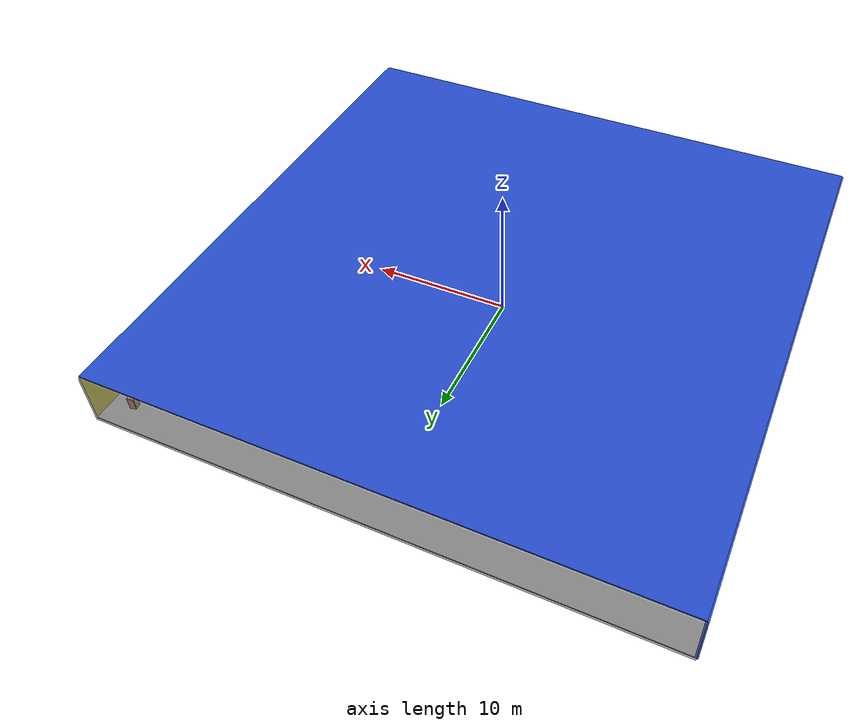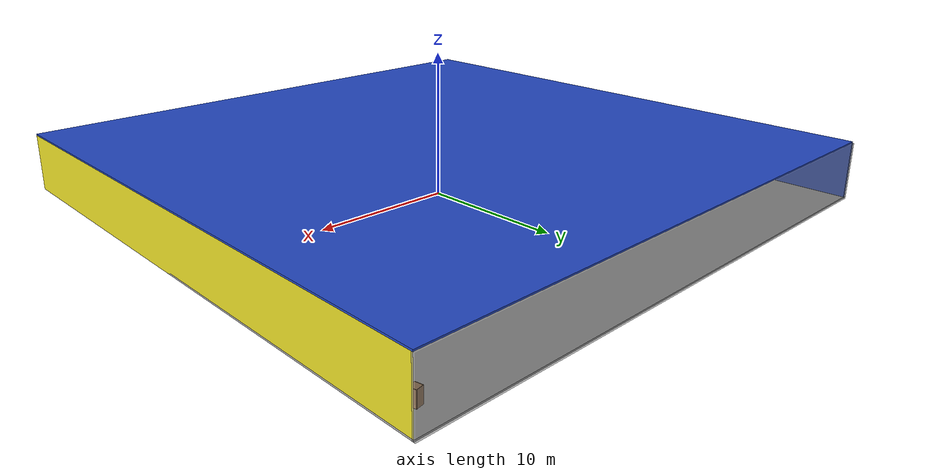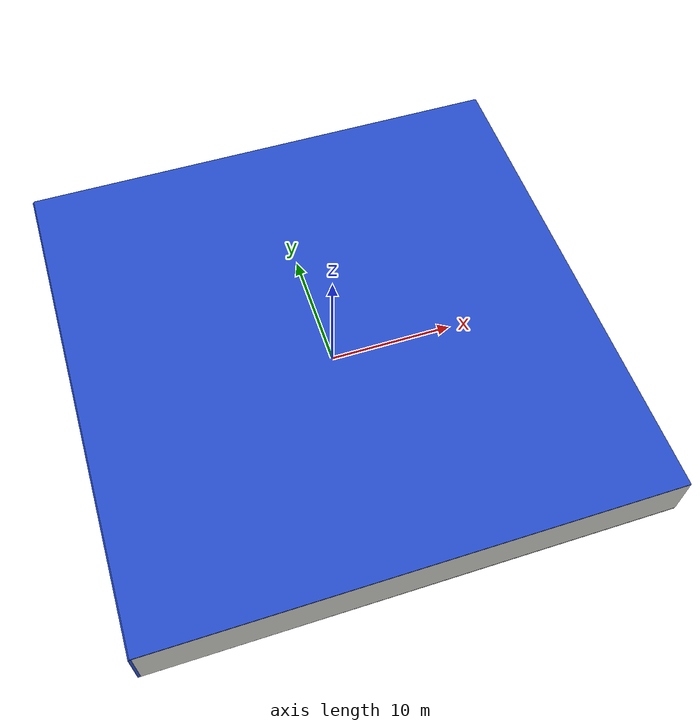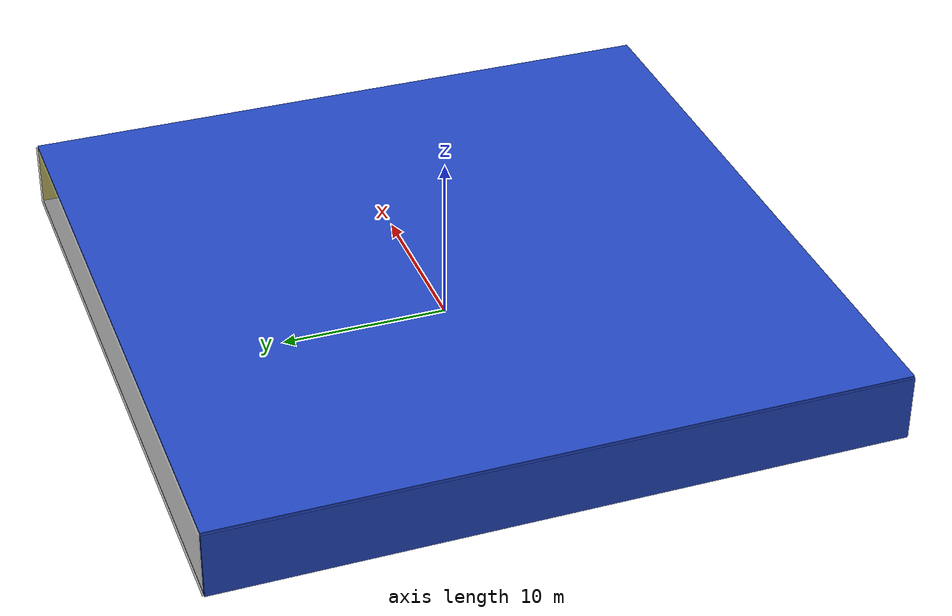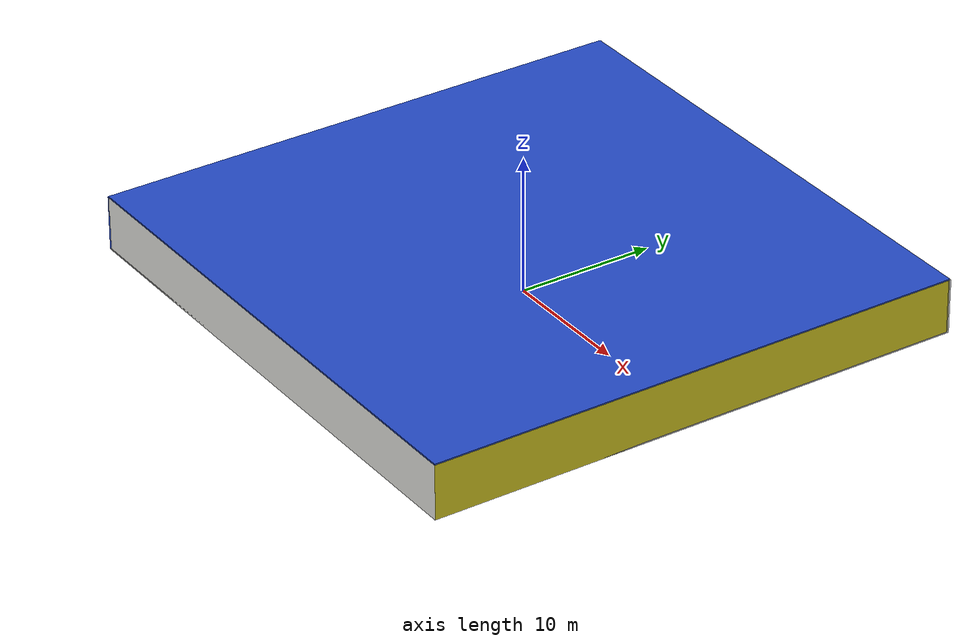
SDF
<sdf version="1.4">
 <world name="default">
  <physics type="ode">
   <max_step_size>0.001</max_step_size>
   <real_time_factor>1</real_time_factor>
   <real_time_update_rate>1000</real_time_update_rate>
   <gravity>0 0 -9.8</gravity>
  </physics>
  <scene><ambient>0.4 0.4 0.4 1</ambient><background>0.7 0.7 0.7 1</background><shadows>1</shadows></scene>
  <model name="Surrounding">
   <static>1</static>
   <link name="Ceiling">
    <collision name="Ceiling_Collision"><geometry><box><size>40 40 0.1</size></box></geometry></collision>
    <visual name="Ceiling_Visual">
     <geometry><box><size>40 40 0.1</size></box></geometry>
     <material>
      <script><uri>file://media/materials/scripts/gazebo.material</uri><name>Gazebo/BlueLaser</name></script>
     </material>
    </visual>
    <pose>0 0 4.05 0 0 0</pose>
   </link>
   <link name="Wall_South">
    <collision name="Wall_South_Collision">
     <geometry><box><size>40 0 4</size></box></geometry>
     <pose>0 0 2 0 -0 0</pose>
    </collision>
    <visual name="Wall_South_Visual">
     <pose>0 0 2 0 -0 0</pose>
     <geometry><box><size>40 0 4</size></box></geometry>
     <material>
      <script><uri>file://media/materials/scripts/gazebo.material</uri><name>Gazebo/CeilingTiled</name></script>
     </material>
    </visual>
    <velocity_decay><linear>0</linear><angular>0</angular></velocity_decay>
    <pose>0 -20 0 0 -0 0</pose>
   </link>
   <link name="Wall_East">
    <collision name="Wall_21_Collision">
     <geometry><box><size>40 0 4</size></box></geometry>
     <pose>0 0 2 0 -0 0</pose>
    </collision>
    <visual name="Wall_21_Visual">
     <pose>0 0 2 0 -0 0</pose>
     <geometry><box><size>40 0 4</size></box></geometry>
     <material>
      <script><uri>file://media/materials/scripts/gazebo.material</uri><name>Gazebo/YellowGlow</name></script>
     </material>
    </visual>
    <velocity_decay><linear>0</linear><angular>0</angular></velocity_decay>
    <pose>20 0 0 0 -0 1.5708</pose>
   </link>
   <link name="Wall_North">
    <collision name="Wall_22_Collision">
     <geometry><box><size>40 0.2 4</size></box></geometry>
     <pose>0 0 2 0 -0 0</pose>
    </collision>
    <visual name="Wall_22_Visual">
     <pose>0 0 2 0 -0 0</pose>
     <geometry><box><size>40 0.2 4</size></box></geometry>
     <material>
      <script><uri>file://media/materials/scripts/gazebo.material</uri><name>Gazebo/GreyTransparent</name></script>
     </material>
    </visual>
    <velocity_decay><linear>0</linear><angular>0</angular></velocity_decay>
    <pose>0 20 0 0 -0 0</pose>
   </link>
   <link name="Wall_West">
    <collision name="Wall_23_Collision">
     <geometry><box><size>40 0.2 4</size></box></geometry>
     <pose>0 0 2 0 -0 0</pose>
    </collision>
    <visual name="Wall_23_Visual">
     <pose>0 0 2 0 -0 0</pose>
     <geometry><box><size>40 0.2 4</size></box></geometry>
     <material>
      <script><uri>file://media/materials/scripts/gazebo.material</uri><name>Gazebo/BlueGlow</name></script>
     </material>
    </visual>
    <velocity_decay><linear>0</linear><angular>0</angular></velocity_decay>
    <pose>-20 0 0 0 0 -1.5708</pose>
   </link>
   <link name="Ground_link">
    <collision name="collision">
     <pose>0 0 .05 0 -0 0</pose>
     <geometry><box><size>40 40 0.1</size></box></geometry>
    </collision>
    <visual name="visual">
     <pose>0 0 .05 0 -0 0</pose>
     <geometry><box><size>40 40 0.1</size></box></geometry>
     <material>
      <script><uri>file://media/materials/scripts/gazebo.material</uri><name>Gazebo/PioneerBody</name></script>
     </material>
    </visual>
   </link>
   <static>1</static>
  </model>
  <spherical_coordinates>
   <surface_model>EARTH_WGS84</surface_model>
   <latitude_deg>0</latitude_deg>
   <longitude_deg>0</longitude_deg>
   <elevation>0</elevation>
   <heading_deg>0</heading_deg>
  </spherical_coordinates>
  <light name="lightball_0" type="diffuse">
   <diffuse>0.8 0.8 0.8 1</diffuse>
   <specular>0.2 0.2 0.2 1</specular>
   <attenuation>
    <range>100</range>
    <constant>0.7</constant>
    <linear>0.01</linear>
    <quadratic>0.001</quadratic>
   </attenuation>
   <direction>-0.5 0.1 -0.9</direction>
   <pose>-9.37688553205 12.0081339959 1.9936121795 0 0 0</pose>
  </light>
  <light name="lightball_1" type="diffuse">
   <diffuse>0.8 0.8 0.8 1</diffuse>
   <specular>0.2 0.2 0.2 1</specular>
   <attenuation>
    <range>100</range>
    <constant>0.7</constant>
    <linear>0.01</linear>
    <quadratic>0.001</quadratic>
   </attenuation>
   <direction>-0.5 0.1 -0.9</direction>
   <pose>-14.3590707012 13.5926292541 2.53919292808 0 0 0</pose>
  </light>
  <light name="lightball_2" type="diffuse">
   <diffuse>0.8 0.8 0.8 1</diffuse>
   <specular>0.2 0.2 0.2 1</specular>
   <attenuation>
    <range>100</range>
    <constant>0.7</constant>
    <linear>0.01</linear>
    <quadratic>0.001</quadratic>
   </attenuation>
   <direction>-0.5 0.1 -0.9</direction>
   <pose>6.66317146613 17.650372588 0.644298974089 0 0 0</pose>
  </light>
  <light name="lightball_3" type="diffuse">
   <diffuse>0.8 0.8 0.8 1</diffuse>
   <specular>0.2 0.2 0.2 1</specular>
   <attenuation>
    <range>100</range>
    <constant>0.7</constant>
    <linear>0.01</linear>
    <quadratic>0.001</quadratic>
   </attenuation>
   <direction>-0.5 0.1 -0.9</direction>
   <pose>7.26699767194 -9.04353485049 3.27082458955 0 0 0</pose>
  </light>
  <include><uri>model://cabinet</uri><pose>-18.5295785547 8.66751520397 0 0 0 0.583267035895</pose></include>
  <include><uri>model://table</uri><pose>-15.1316814028 -16.8330699612 0 0 0 1.7512932182</pose></include>
  <include>
   <uri>model://construction_cone</uri>
   <pose>-14.1148361634 -3.69657305198 0 0 0 3.12303066902</pose>
  </include>
  <include><uri>model://cabinet</uri><pose>-15.3569661494 3.80308091966 0 0 0 2.31818860598</pose></include>
  <include>
   <uri>model://construction_cone</uri>
   <pose>-11.0064318929 -11.3404017723 0 0 0 1.13194360689</pose>
  </include>
  <include>
   <uri>model://textured_shapes</uri>
   <pose>-8.70758223364 -1.38307487303 0 0 0 0.000687028639702</pose>
  </include>
  <include>
   <uri>model://robocup_3Dsim_goal</uri>
   <pose>-8.19748303175 6.35926278634 0 0 0 0.411003763128</pose>
  </include>
  <include><uri>model://cabinet</uri><pose>-5.45898741091 -9.41021779487 0 0 0 2.14649572627</pose></include>
  <include><uri>model://cabinet</uri><pose>-4.77085589545 12.1504247891 0 0 0 0.706161543954</pose></include>
  <include>
   <uri>model://robocup_3Dsim_goal</uri>
   <pose>-2.41508005036 -3.43948948577 0 0 0 1.71340215104</pose>
  </include>
  <include>
   <uri>model://construction_cone</uri>
   <pose>-1.32769052584 6.13723988327 0 0 0 2.91345655116</pose>
  </include>
  <include>
   <uri>model://robocup_3Dsim_goal</uri>
   <pose>-0.135287524911 -16.4672655172 0 0 0 0.498360792922</pose>
  </include>
  <include><uri>model://cabinet</uri><pose>-0.0425994624757 3.48174151949 0 0 0 1.84537826384</pose></include>
  <include>
   <uri>model://construction_cone</uri>
   <pose>2.54069986731 -17.9984390699 0 0 0 0.756075778025</pose>
  </include>
  <include><uri>model://table</uri><pose>6.03158060652 -15.4233157765 0 0 0 0.567386705014</pose></include>
  <include><uri>model://table</uri><pose>12.0328865989 -16.4801183572 0 0 0 0.942296200087</pose></include>
  <include><uri>model://table</uri><pose>12.1158795739 -12.3546410587 0 0 0 0.258811581729</pose></include>
  <include>
   <uri>model://construction_cone</uri>
   <pose>12.1546826757 1.27088022448 0 0 0 1.46064835953</pose>
  </include>
  <include><uri>model://cabinet</uri><pose>16.6268402415 -1.89011394297 0 0 0 1.88552857363</pose></include>
  <include>
   <uri>model://robocup_3Dsim_goal</uri>
   <pose>15.3731097138 14.404440078 0 0 0 1.80309584308</pose>
  </include>
  <include>
   <uri>model://textured_shapes</uri>
   <pose>17.6349253672 -12.6363814022 0 0 0 0.410454259197</pose>
  </include>
  <include><uri>model://table</uri><pose>17.700067648 -1.44841763383 0 0 0 0.827014232665</pose></include>
  <include><uri>model://cabinet</uri><pose>17.4859801255 5.40255034046 0 0 0 1.88080852056</pose></include>
  <include><uri>model://cabinet</uri><pose>18.9981540335 10.4043879956 0 0 0 0.144943740544</pose></include>
  <include><uri>model://cabinet</uri><pose>18.3620518091 18.26866604 0 0 0 1.76837127409</pose></include>
 </world>
</sdf>

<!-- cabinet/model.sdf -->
<sdf version="1.5">
  <model name="cabinet">
    <static>true</static>
    <link name="cabinet_bottom_plate">
      <inertial>
        <pose>0 0 -1 0 0 0</pose>
        <inertia>
          <ixx>2.050000</ixx>
          <ixy>0</ixy>
          <ixz>0</ixz>
          <iyy>2.050000</iyy>
          <iyz>0</iyz>
          <izz>2.050000</izz>
        </inertia>
        <mass>25.000000</mass>
      </inertial>
      <collision name="cabinet_bottom_plate_geom">
        <pose>0 0 0.010000 0 0 0</pose>
        <geometry>
          <box>
            <size>0.450000 0.450000 0.020000</size>
          </box>
        </geometry>
      </collision>
      <visual name="cabinet_bottom_plate_geom_visual">
        <pose>0 0 0.010000 0 0 0</pose>
        <geometry>
          <box>
            <size>0.450000 0.450000 0.020000</size>
          </box>
        </geometry>
        <material>
          <script>
            <uri>model://media/materials/scripts/gazebo.material</uri>
            <name>Gazebo/Wood</name>
          </script>
        </material>
      </visual>
      <collision name="cabinet_bottom_plate_geom_cabinet_back_plate">
        <pose>0.235000 0 0.510000 0 0 0</pose>
        <geometry>
          <box>
            <size>0.020000 0.450000 1.020000</size>
          </box>
        </geometry>
      </collision>
      <visual name="cabinet_bottom_plate_geom_cabinet_back_plate_visual">
        <pose>0.235000 0 0.510000 0 0 0</pose>
        <geometry>
          <box>
            <size>0.020000 0.450000 1.020000</size>
          </box>
        </geometry>
        <material>
          <script>
            <uri>model://media/materials/scripts/gazebo.material</uri>
            <name>Gazebo/Wood</name>
          </script>
        </material>
      </visual>
      <collision name="cabinet_bottom_plate_geom_cabinet_left_plate">
        <pose>0 0.235000 0.510000 0 0 0</pose>
        <geometry>
          <box>
            <size>0.450000 0.020000 1.020000</size>
          </box>
        </geometry>
      </collision>
      <visual name="cabinet_bottom_plate_geom_cabinet_left_plate_visual">
        <pose>0 0.235000 0.510000 0 0 0</pose>
        <geometry>
          <box>
            <size>0.450000 0.020000 1.020000</size>
          </box>
        </geometry>
        <material>
          <script>
            <uri>model://media/materials/scripts/gazebo.material</uri>
            <name>Gazebo/Wood</name>
          </script>
        </material>
      </visual>
      <collision name="cabinet_bottom_plate_geom_cabinet_middle_plate">
        <pose>0 0 0.510000 0 0 0</pose>
        <geometry>
          <box>
            <size>0.450000 0.450000 0.020000</size>
          </box>
        </geometry>
      </collision>
      <visual name="cabinet_bottom_plate_geom_cabinet_middle_plate_visual">
        <pose>0 0 0.510000 0 0 0</pose>
        <geometry>
          <box>
            <size>0.450000 0.450000 0.020000</size>
          </box>
        </geometry>
        <material>
          <script>
            <uri>model://media/materials/scripts/gazebo.material</uri>
            <name>Gazebo/Wood</name>
          </script>
        </material>
      </visual>
      <collision name="cabinet_bottom_plate_geom_cabinet_right_plate">
        <pose>0 -0.235000 0.510000 0 0 0</pose>
        <geometry>
          <box>
            <size>0.450000 0.020000 1.020000</size>
          </box>
        </geometry>
      </collision>
      <visual name="cabinet_bottom_plate_geom_cabinet_right_plate_visual">
        <pose>0 -0.235000 0.510000 0 0 0</pose>
        <geometry>
          <box>
            <size>0.450000 0.020000 1.020000</size>
          </box>
        </geometry>
        <material>
          <script>
            <uri>model://media/materials/scripts/gazebo.material</uri>
            <name>Gazebo/Wood</name>
          </script>
        </material>
      </visual>
      <collision name="cabinet_bottom_plate_geom_cabinet_top_plate">
        <pose>0 0 1.010000 0 0 0</pose>
        <geometry>
          <box>
            <size>0.450000 0.450000 0.020000</size>
          </box>
        </geometry>
      </collision>
      <visual name="cabinet_bottom_plate_geom_cabinet_top_plate_visual">
        <pose>0 0 1.010000 0 0 0</pose>
        <geometry>
          <box>
            <size>0.450000 0.450000 0.020000</size>
          </box>
        </geometry>
        <material>
          <script>
            <uri>model://media/materials/scripts/gazebo.material</uri>
            <name>Gazebo/Wood</name>
          </script>
        </material>
      </visual>
    </link>
  </model>
</sdf>

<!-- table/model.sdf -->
<sdf version="1.5">
  <model name="table">
    <static>true</static>
    <link name="link">
      <collision name="surface">
        <pose>0 0 1.0 0 0 0</pose>
        <geometry>
          <box>
            <size>1.5 0.8 0.03</size>
          </box>
        </geometry>
        <surface>
          <friction>
            <ode>
              <mu>0.6</mu>
              <mu2>0.6</mu2>
            </ode>
          </friction>
        </surface>
      </collision>
      <visual name="visual1">
        <pose>0 0 1.0 0 0 0</pose>
        <geometry>
          <box>
            <size>1.5 0.8 0.03</size>
          </box>
        </geometry>
        <material>
          <script>
            <uri>model://media/materials/scripts/gazebo.material</uri>
            <name>Gazebo/Wood</name>
          </script>
        </material>
      </visual>
      <collision name="front_left_leg">
        <pose>0.68 0.38 0.5 0 0 0</pose>
        <geometry>
          <cylinder>
            <radius>0.02</radius>
            <length>1.0</length>
          </cylinder>
        </geometry>
      </collision>
      <visual name="front_left_leg">
        <pose>0.68 0.38 0.5 0 0 0</pose>
        <geometry>
          <cylinder>
            <radius>0.02</radius>
            <length>1.0</length>
          </cylinder>
        </geometry>
        <material>
          <script>
            <uri>model://media/materials/scripts/gazebo.material</uri>
            <name>Gazebo/Grey</name>
          </script>
        </material>
      </visual>
      <collision name="front_right_leg">
        <pose>0.68 -0.38 0.5 0 0 0</pose>
        <geometry>
          <cylinder>
            <radius>0.02</radius>
            <length>1.0</length>
          </cylinder>
        </geometry>
      </collision>
      <visual name="front_right_leg">
        <pose>0.68 -0.38 0.5 0 0 0</pose>
        <geometry>
          <cylinder>
            <radius>0.02</radius>
            <length>1.0</length>
          </cylinder>
        </geometry>
        <material>
          <script>
            <uri>model://media/materials/scripts/gazebo.material</uri>
            <name>Gazebo/Grey</name>
          </script>
        </material>
      </visual>
      <collision name="back_right_leg">
        <pose>-0.68 -0.38 0.5 0 0 0</pose>
        <geometry>
          <cylinder>
            <radius>0.02</radius>
            <length>1.0</length>
          </cylinder>
        </geometry>
      </collision>
      <visual name="back_right_leg">
        <pose>-0.68 -0.38 0.5 0 0 0</pose>
        <geometry>
          <cylinder>
            <radius>0.02</radius>
            <length>1.0</length>
          </cylinder>
        </geometry>
        <material>
          <script>
            <uri>model://media/materials/scripts/gazebo.material</uri>
            <name>Gazebo/Grey</name>
          </script>
        </material>
      </visual>
      <collision name="back_left_leg">
        <pose>-0.68 0.38 0.5 0 0 0</pose>
        <geometry>
          <cylinder>
            <radius>0.02</radius>
            <length>1.0</length>
          </cylinder>
        </geometry>
      </collision>
      <visual name="back_left_leg">
        <pose>-0.68 0.38 0.5 0 0 0</pose>
        <geometry>
          <cylinder>
            <radius>0.02</radius>
            <length>1.0</length>
          </cylinder>
        </geometry>
        <material>
          <script>
            <uri>model://media/materials/scripts/gazebo.material</uri>
            <name>Gazebo/Grey</name>
          </script>
        </material>
      </visual>
    </link>
  </model>
</sdf>

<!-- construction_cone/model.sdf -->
<sdf version="1.5">
  <model name="Construction Cone">
    <link name="link">
      <collision name="collision">
        <geometry>
          <mesh>
            <scale>10 10 10</scale>
            <uri>file://isr-testbed/construction_cone/meshes/construction_cone.dae</uri>
          </mesh>
        </geometry>
      </collision>
      <visual name="visual">
        <geometry>
          <mesh>
            <scale>10 10 10</scale>
            <uri>file://isr-testbed/construction_cone/meshes/construction_cone.dae</uri>
          </mesh>
        </geometry>
      </visual>
    </link>
  </model>
</sdf>

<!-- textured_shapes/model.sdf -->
<sdf version="1.6">
  <model name="textured_shapes">
    <pose>0 0 0.5 0 0 0</pose>
    <link name="box">
      <pose>0 -1.5 0 0 0 0</pose>
      <collision name="collision">
        <geometry>
          <box>
            <size>1 1 1</size>
          </box>
        </geometry>
      </collision>
      <visual name="visual">
        <geometry>
          <box>
            <size>1 1 1</size>
          </box>
        </geometry>
        <material>
          <script>
            <uri>model://../model_source/models/textured_shapes/materials/scripts</uri>
            <uri>model://../model_source/models/textured_shapes/materials/textures</uri>
            <name>TexturedShape/Squares</name>
          </script>
        </material>
      </visual>
    </link>
    <link name="sphere">
      <collision name="collision">
        <geometry>
          <sphere>
            <radius>0.5</radius>
          </sphere>
        </geometry>
      </collision>
      <visual name="visual">
        <geometry>
          <sphere>
            <radius>0.5</radius>
          </sphere>
        </geometry>
        <material>
          <script>
            <uri>model://../model_source/models/textured_shapes/materials/scripts</uri>
            <uri>model://../model_source/models/textured_shapes/materials/textures</uri>
            <name>TexturedShape/Squares</name>
          </script>
        </material>
      </visual>
    </link>
    <link name="cylinder">
      <pose>0 1.5 0 0 0 0</pose>
      <collision name="collision">
        <geometry>
          <cylinder>
            <radius>0.5</radius>
            <length>1</length>
          </cylinder>
        </geometry>
      </collision>
      <visual name="visual">
        <geometry>
          <cylinder>
            <radius>0.5</radius>
            <length>1</length>
          </cylinder>
        </geometry>
        <material>
          <script>
            <uri>model://../model_source/models/textured_shapes/materials/scripts</uri>
            <uri>model://../model_source/models/textured_shapes/materials/textures</uri>
            <name>TexturedShape/Squares</name>
          </script>
        </material>
      </visual>
    </link>
  </model>
</sdf>

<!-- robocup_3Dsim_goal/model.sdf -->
<sdf version="1.5">
  <model name="robocup_3d_goal">
    <static>true</static>
    <link name="left_post">
      <pose>0 1.05 0.45 0 0 0</pose>
      <collision name="collision">
        <geometry>
          <cylinder>
            <radius>0.05</radius>
            <length>0.9</length>
          </cylinder>
        </geometry>
      </collision>
      <visual name="visual">
        <geometry>
          <cylinder>
            <radius>0.05</radius>
            <length>0.9</length>
          </cylinder>
        </geometry>
        <material>
          <script>
            <uri>file://media/materials/scripts/gazebo.material</uri>
            <name>Gazebo/ZincYellow</name>
          </script>
        </material>
      </visual>
    </link>
    <link name="left_support_horiz_lower">
      <pose>0.30 1.05 0.01 0 0 0</pose>
      <collision name="collision">
        <geometry>
          <box>
            <size>0.50 0.02 0.02</size>
          </box>
        </geometry>
      </collision>
      <visual name="visual">
        <geometry>
          <box>
            <size>0.50 0.02 0.02</size>
          </box>
        </geometry>
        <material>
          <script>
            <uri>file://media/materials/scripts/gazebo.material</uri>
            <name>Gazebo/White</name>
          </script>
        </material>
      </visual>
    </link>
    <link name="left_support_horiz_upper">
      <pose>0.30 1.05 0.79 0 0 0</pose>
      <collision name="collision">
        <geometry>
          <box>
            <size>0.50 0.02 0.02</size>
          </box>
        </geometry>
      </collision>
      <visual name="visual">
        <geometry>
          <box>
            <size>0.50 0.02 0.02</size>
          </box>
        </geometry>
        <material>
          <script>
            <uri>file://media/materials/scripts/gazebo.material</uri>
            <name>Gazebo/White</name>
          </script>
        </material>
      </visual>
    </link>
    <link name="left_support_vertical">
      <pose>0.56 1.05 0.4 0 1.5708 0</pose>
      <collision name="collision">
        <geometry>
          <box>
            <size>0.80 0.02 0.02</size>
          </box>
        </geometry>
      </collision>
      <visual name="visual">
        <geometry>
          <box>
            <size>0.80 0.02 0.02</size>
          </box>
        </geometry>
        <material>
          <script>
            <uri>file://media/materials/scripts/gazebo.material</uri>
            <name>Gazebo/White</name>
          </script>
        </material>
      </visual>
    </link>
    <link name="right_support_horiz_lower">
      <pose>0.30 -1.05 0.01 0 0 0</pose>
      <collision name="collision">
        <geometry>
          <box>
            <size>0.50 0.02 0.02</size>
          </box>
        </geometry>
      </collision>
      <visual name="visual">
        <geometry>
          <box>
            <size>0.50 0.02 0.02</size>
          </box>
        </geometry>
        <material>
          <script>
            <uri>file://media/materials/scripts/gazebo.material</uri>
            <name>Gazebo/White</name>
          </script>
        </material>
      </visual>
    </link>
    <link name="right_support_horiz_upper">
      <pose>0.30 -1.05 0.79 0 0 0</pose>
      <collision name="collision">
        <geometry>
          <box>
            <size>0.50 0.02 0.02</size>
          </box>
        </geometry>
      </collision>
      <visual name="visual">
        <geometry>
          <box>
            <size>0.50 0.02 0.02</size>
          </box>
        </geometry>
        <material>
          <script>
            <uri>file://media/materials/scripts/gazebo.material</uri>
            <name>Gazebo/White</name>
          </script>
        </material>
      </visual>
    </link>
    <link name="right_support_vertical">
      <pose>0.56 -1.05 0.4 0 1.5708 0</pose>
      <collision name="collision">
        <geometry>
          <box>
            <size>0.80 0.02 0.02</size>
          </box>
        </geometry>
      </collision>
      <visual name="visual">
        <geometry>
          <box>
            <size>0.80 0.02 0.02</size>
          </box>
        </geometry>
        <material>
          <script>
            <uri>file://media/materials/scripts/gazebo.material</uri>
            <name>Gazebo/White</name>
          </script>
        </material>
      </visual>
    </link>
    <link name="center_support_horiz_lower">
      <pose>0.56 0 0.01 0 1.5708 0</pose>
      <collision name="collision">
        <geometry>
          <box>
            <size>0.02 2.08 0.02</size>
          </box>
        </geometry>
      </collision>
      <visual name="visual">
        <geometry>
          <box>
            <size>0.02 2.08 0.02</size>
          </box>
        </geometry>
        <material>
          <script>
            <uri>file://media/materials/scripts/gazebo.material</uri>
            <name>Gazebo/White</name>
          </script>
        </material>
      </visual>
    </link>
    <link name="center_support_horiz_upper">
      <pose>0.56 0 0.79 0 1.5708 0</pose>
      <collision name="collision">
        <geometry>
          <box>
            <size>0.02 2.08 0.02</size>
          </box>
        </geometry>
      </collision>
      <visual name="visual">
        <geometry>
          <box>
            <size>0.02 2.08 0.02</size>
          </box>
        </geometry>
        <material>
          <script>
            <uri>file://media/materials/scripts/gazebo.material</uri>
            <name>Gazebo/White</name>
          </script>
        </material>
      </visual>
    </link>
    <link name="right_post">
      <pose>0 -1.05 0.45 0 0 0</pose>
      <collision name="collision">
        <geometry>
          <cylinder>
            <radius>0.05</radius>
            <length>0.9</length>
          </cylinder>
        </geometry>
      </collision>
      <visual name="visual">
        <geometry>
          <cylinder>
            <radius>0.05</radius>
            <length>0.9</length>
          </cylinder>
        </geometry>
        <material>
          <script>
            <uri>file://media/materials/scripts/gazebo.material</uri>
            <name>Gazebo/ZincYellow</name>
          </script>
        </material>
      </visual>
    </link>
    <link name="crossbar">
      <pose>0 0 0.85 1.57 1.57 0</pose>
      <collision name="collision">
        <geometry>
          <cylinder>
            <radius>0.05</radius>
            <length>2.0</length>
          </cylinder>
        </geometry>
      </collision>
      <visual name="visual">
        <geometry>
          <cylinder>
            <radius>0.05</radius>
            <length>2.0</length>
          </cylinder>
        </geometry>
        <material>
          <script>
            <uri>file://media/materials/scripts/gazebo.material</uri>
            <name>Gazebo/ZincYellow</name>
          </script>
        </material>
      </visual>
    </link>
    <link name="center_net">
      <pose>0.56 0 0.40 0 0 0</pose>
      <collision name="collision">
        <geometry>
          <box>
            <size>0.01 2.1 0.80</size>
          </box>
        </geometry>
      </collision>
      <visual name="visual">
        <geometry>
          <box>
            <size>0.01 2.1 0.80</size>
          </box>
        </geometry>
        <material>
          <script>
            <uri>model://../model_source/models/robocup09_spl_field/materials/scripts/</uri>
            <uri>model://../model_source/models/robocup09_spl_field/materials/textures/</uri>
            <name>RoboCup/Net</name>
          </script>
        </material>
      </visual>
    </link>
    <link name="left_net">
      <pose>0.30 1.05 0.40 0 0 0</pose>
      <collision name="collision">
        <geometry>
          <box>
            <size>0.50 0.01 0.76</size>
          </box>
        </geometry>
      </collision>
      <visual name="visual">
        <geometry>
          <box>
            <size>0.50 0.01 0.76</size>
          </box>
        </geometry>
        <material>
          <script>
            <uri>model://../model_source/models/robocup09_spl_field/materials/scripts/</uri>
            <uri>model://../model_source/models/robocup09_spl_field/materials/textures/</uri>
            <name>RoboCup/Net</name>
          </script>
        </material>
      </visual>
    </link>
    <link name="right_net">
      <pose>0.30 -1.05 0.40 0 0 0</pose>
      <collision name="collision">
        <geometry>
          <box>
            <size>0.50 0.01 0.76</size>
          </box>
        </geometry>
      </collision>
      <visual name="visual">
        <geometry>
          <box>
            <size>0.50 0.01 0.76</size>
          </box>
        </geometry>
        <material>
          <script>
            <uri>model://../model_source/models/robocup09_spl_field/materials/scripts/</uri>
            <uri>model://../model_source/models/robocup09_spl_field/materials/textures/</uri>
            <name>RoboCup/Net</name>
          </script>
        </material>
      </visual>
    </link>
  </model>
</sdf>
